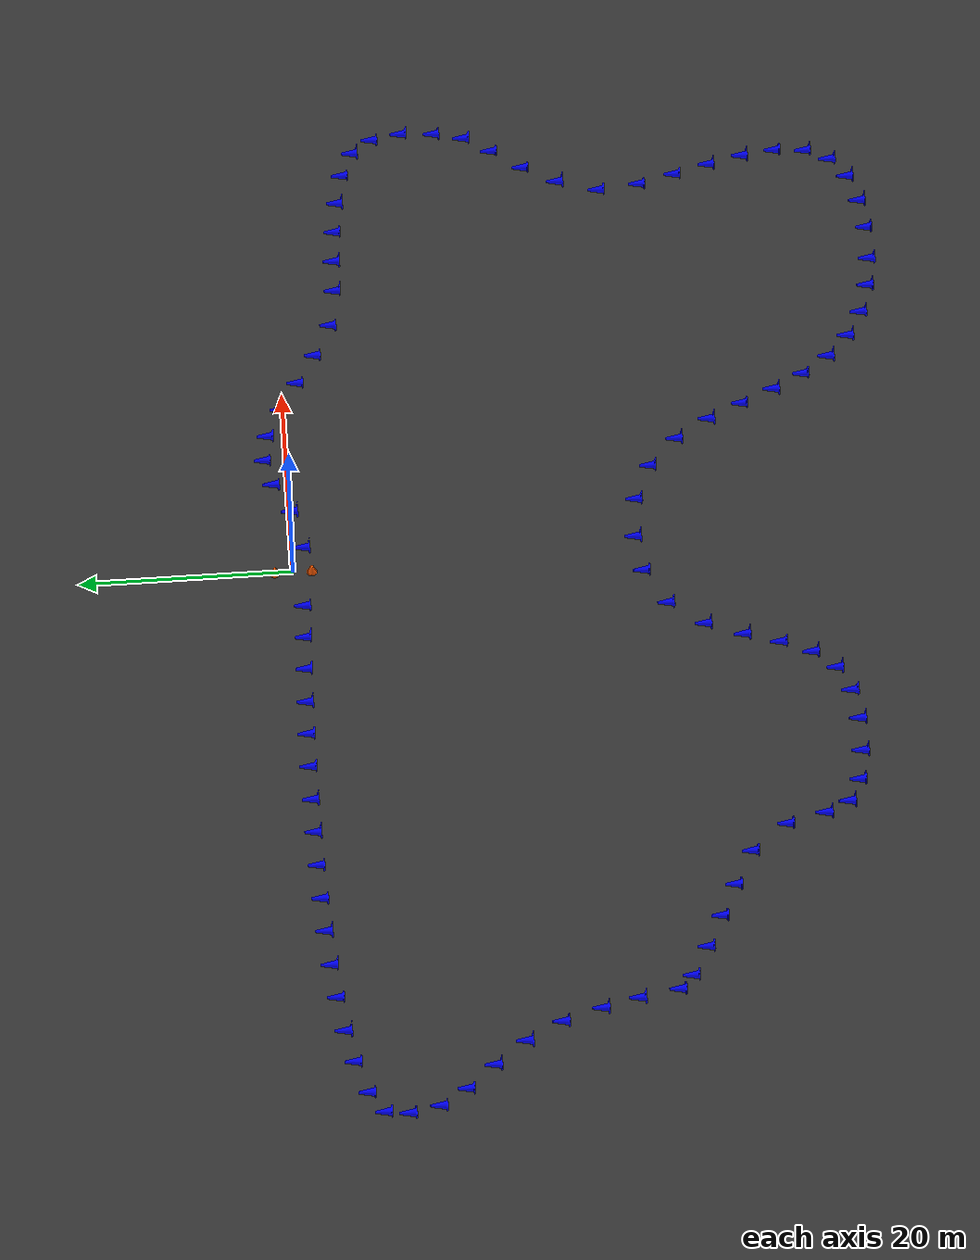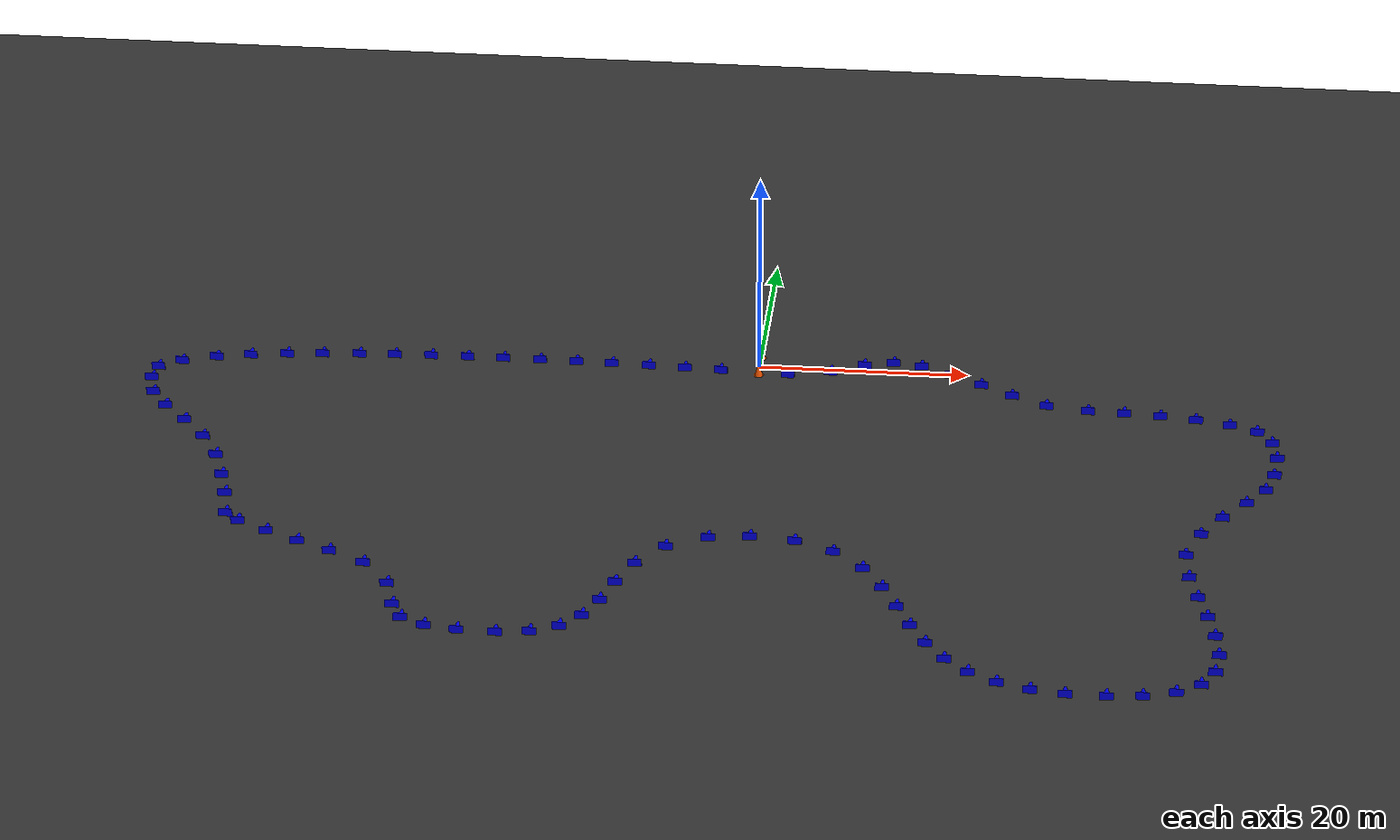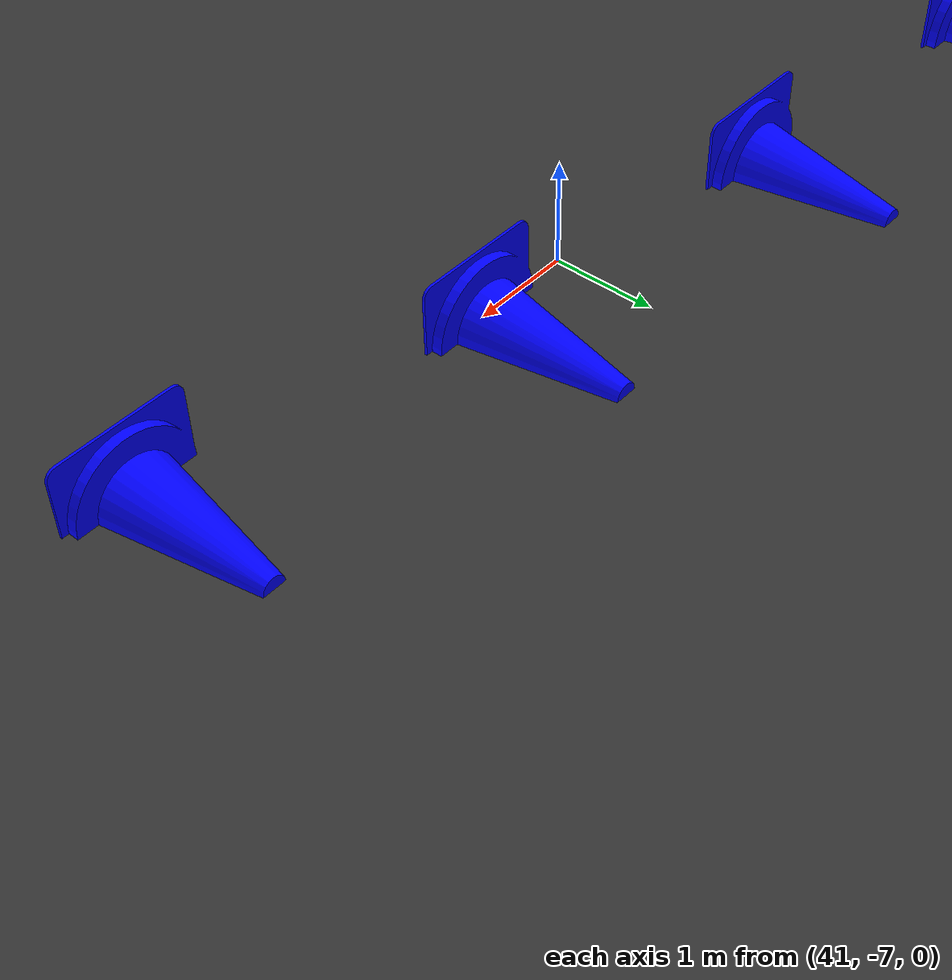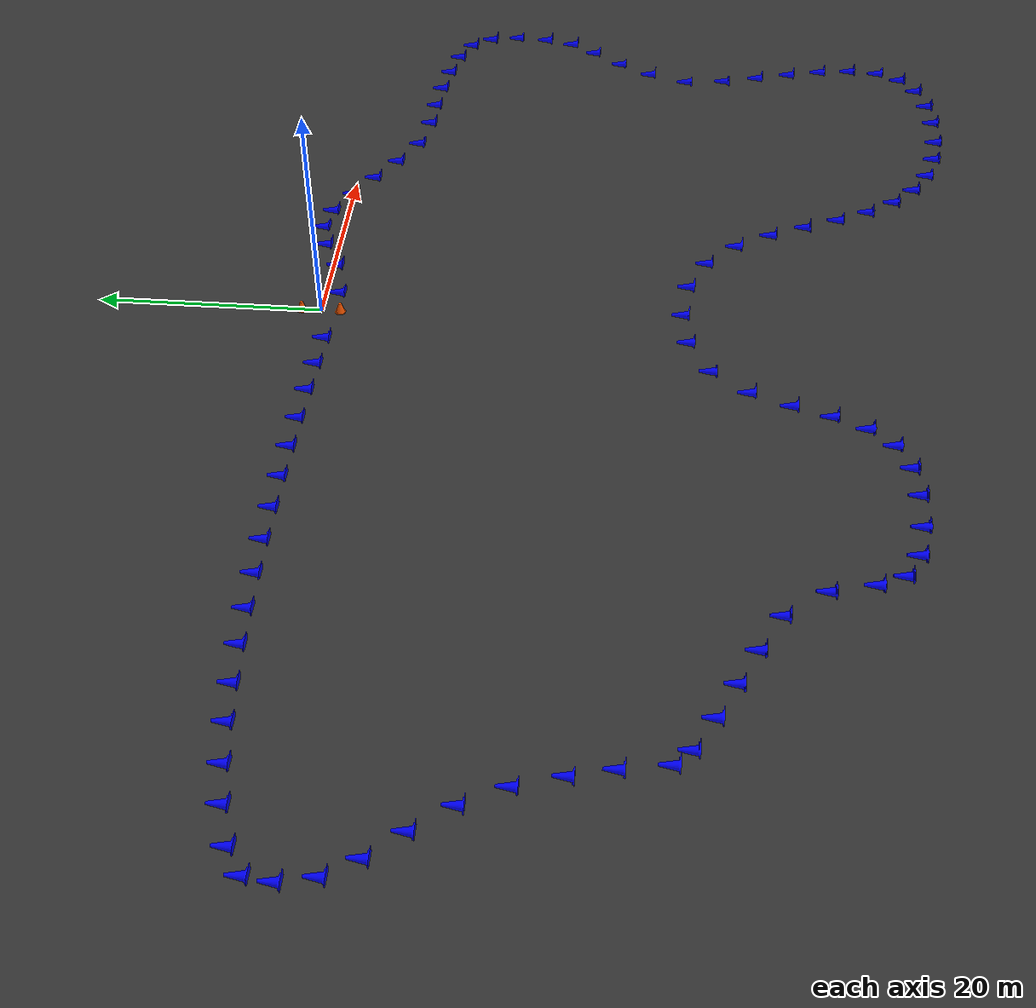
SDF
<sdf version="1.7">
 <world name="generated_world">
  <scene><sky><clouds><speed>12</speed></clouds></sky><grid>false</grid><shadows>1</shadows></scene>
  <physics type="ode">
   <max_step_size>0.001</max_step_size>
   <real_time_update_rate>1000</real_time_update_rate>
  </physics>
  <plugin filename="gz-sim-physics-system" name="gz::sim::systems::Physics"/>
  <plugin filename="gz-sim-user-commands-system" name="gz::sim::systems::UserCommands"/>
  <plugin filename="gz-sim-scene-broadcaster-system" name="gz::sim::systems::SceneBroadcaster"/>
  <plugin filename="gz-sim-contact-system" name="gz::sim::systems::Contact"/>
  <light name="sun" type="directional">
   <pose>0 0 10 0 0 0</pose>
   <diffuse>1 1 1 1</diffuse>
   <specular>0.2 0.2 0.2 1</specular>
   <direction>-0.5 0.2 -1</direction>
   <attenuation>
    <range>300</range>
    <constant>0.9</constant>
    <linear>0.01</linear>
    <quadratic>0.001</quadratic>
   </attenuation>
  </light>
  <model name="asphalt_ground">
   <static>1</static>
   <link name="link">
    <collision name="collision">
     <geometry><plane><normal>0 0 1</normal><size>300 300</size></plane></geometry>
     <surface><friction><ode><mu>100</mu><mu2>50</mu2></ode></friction></surface>
    </collision>
    <visual name="visual">
     <geometry><plane><normal>0 0 1</normal><size>300 300</size></plane></geometry>
     <material>
      <ambient>0.2 0.2 0.2 1</ambient>
      <diffuse>0.2 0.2 0.2 1</diffuse>
      <specular>0.1 0.1 0.1 1</specular>
     </material>
    </visual>
   </link>
  </model>
  <include><uri>model://cone_yellow</uri><name>cone_yellow_001</name><pose>2.761 1.924 0 0 0 0</pose></include>
  <include><uri>model://cone_yellow</uri><name>cone_yellow_002</name><pose>5.450 2.523 0 0 0 0</pose></include>
  <include><uri>model://cone_yellow</uri><name>cone_yellow_003</name><pose>8.572 4.087 0 0 0 0</pose></include>
  <include><uri>model://cone_yellow</uri><name>cone_yellow_004</name><pose>12.532 5.073 0 0 0 0</pose></include>
  <include><uri>model://cone_yellow</uri><name>cone_yellow_005</name><pose>16.664 4.449 0 0 0 0</pose></include>
  <include><uri>model://cone_yellow</uri><name>cone_yellow_006</name><pose>20.091 2.842 0 0 0 0</pose></include>
  <include><uri>model://cone_yellow</uri><name>cone_yellow_007</name><pose>23.184 1.022 0 0 0 0</pose></include>
  <include>
   <uri>model://cone_yellow</uri>
   <name>cone_yellow_008</name>
   <pose>26.159 -0.766 0 0 0 0</pose>
  </include>
  <include>
   <uri>model://cone_yellow</uri>
   <name>cone_yellow_009</name>
   <pose>29.061 -2.222 0 0 0 0</pose>
  </include>
  <include>
   <uri>model://cone_yellow</uri>
   <name>cone_yellow_010</name>
   <pose>31.822 -2.636 0 0 0 0</pose>
  </include>
  <include>
   <uri>model://cone_yellow</uri>
   <name>cone_yellow_011</name>
   <pose>35.399 -2.763 0 0 0 0</pose>
  </include>
  <include>
   <uri>model://cone_yellow</uri>
   <name>cone_yellow_012</name>
   <pose>38.978 -3.029 0 0 0 0</pose>
  </include>
  <include>
   <uri>model://cone_yellow</uri>
   <name>cone_yellow_013</name>
   <pose>42.562 -3.479 0 0 0 0</pose>
  </include>
  <include>
   <uri>model://cone_yellow</uri>
   <name>cone_yellow_014</name>
   <pose>46.192 -4.246 0 0 0 0</pose>
  </include>
  <include>
   <uri>model://cone_yellow</uri>
   <name>cone_yellow_015</name>
   <pose>49.948 -5.921 0 0 0 0</pose>
  </include>
  <include>
   <uri>model://cone_yellow</uri>
   <name>cone_yellow_016</name>
   <pose>52.579 -9.469 0 0 0 0</pose>
  </include>
  <include>
   <uri>model://cone_yellow</uri>
   <name>cone_yellow_017</name>
   <pose>53.333 -13.460 0 0 0 0</pose>
  </include>
  <include>
   <uri>model://cone_yellow</uri>
   <name>cone_yellow_018</name>
   <pose>53.105 -17.264 0 0 0 0</pose>
  </include>
  <include>
   <uri>model://cone_yellow</uri>
   <name>cone_yellow_019</name>
   <pose>52.098 -21.140 0 0 0 0</pose>
  </include>
  <include>
   <uri>model://cone_yellow</uri>
   <name>cone_yellow_020</name>
   <pose>49.965 -24.370 0 0 0 0</pose>
  </include>
  <include>
   <uri>model://cone_yellow</uri>
   <name>cone_yellow_021</name>
   <pose>47.941 -27.075 0 0 0 0</pose>
  </include>
  <include>
   <uri>model://cone_yellow</uri>
   <name>cone_yellow_022</name>
   <pose>46.303 -29.892 0 0 0 0</pose>
  </include>
  <include>
   <uri>model://cone_yellow</uri>
   <name>cone_yellow_023</name>
   <pose>45.396 -32.440 0 0 0 0</pose>
  </include>
  <include>
   <uri>model://cone_yellow</uri>
   <name>cone_yellow_024</name>
   <pose>45.752 -35.472 0 0 0 0</pose>
  </include>
  <include>
   <uri>model://cone_yellow</uri>
   <name>cone_yellow_025</name>
   <pose>46.611 -38.764 0 0 0 0</pose>
  </include>
  <include>
   <uri>model://cone_yellow</uri>
   <name>cone_yellow_026</name>
   <pose>47.582 -42.168 0 0 0 0</pose>
  </include>
  <include>
   <uri>model://cone_yellow</uri>
   <name>cone_yellow_027</name>
   <pose>48.446 -45.715 0 0 0 0</pose>
  </include>
  <include>
   <uri>model://cone_yellow</uri>
   <name>cone_yellow_028</name>
   <pose>48.945 -49.464 0 0 0 0</pose>
  </include>
  <include>
   <uri>model://cone_yellow</uri>
   <name>cone_yellow_029</name>
   <pose>48.596 -53.442 0 0 0 0</pose>
  </include>
  <include>
   <uri>model://cone_yellow</uri>
   <name>cone_yellow_030</name>
   <pose>46.649 -57.171 0 0 0 0</pose>
  </include>
  <include>
   <uri>model://cone_yellow</uri>
   <name>cone_yellow_031</name>
   <pose>43.324 -59.563 0 0 0 0</pose>
  </include>
  <include>
   <uri>model://cone_yellow</uri>
   <name>cone_yellow_032</name>
   <pose>39.553 -60.697 0 0 0 0</pose>
  </include>
  <include>
   <uri>model://cone_yellow</uri>
   <name>cone_yellow_033</name>
   <pose>35.860 -61.083 0 0 0 0</pose>
  </include>
  <include>
   <uri>model://cone_yellow</uri>
   <name>cone_yellow_034</name>
   <pose>31.779 -61.017 0 0 0 0</pose>
  </include>
  <include>
   <uri>model://cone_yellow</uri>
   <name>cone_yellow_035</name>
   <pose>28.188 -60.500 0 0 0 0</pose>
  </include>
  <include>
   <uri>model://cone_yellow</uri>
   <name>cone_yellow_036</name>
   <pose>24.498 -59.327 0 0 0 0</pose>
  </include>
  <include>
   <uri>model://cone_yellow</uri>
   <name>cone_yellow_037</name>
   <pose>21.187 -57.440 0 0 0 0</pose>
  </include>
  <include>
   <uri>model://cone_yellow</uri>
   <name>cone_yellow_038</name>
   <pose>18.362 -54.833 0 0 0 0</pose>
  </include>
  <include>
   <uri>model://cone_yellow</uri>
   <name>cone_yellow_039</name>
   <pose>16.143 -51.754 0 0 0 0</pose>
  </include>
  <include>
   <uri>model://cone_yellow</uri>
   <name>cone_yellow_040</name>
   <pose>14.422 -48.504 0 0 0 0</pose>
  </include>
  <include>
   <uri>model://cone_yellow</uri>
   <name>cone_yellow_041</name>
   <pose>12.960 -45.263 0 0 0 0</pose>
  </include>
  <include>
   <uri>model://cone_yellow</uri>
   <name>cone_yellow_042</name>
   <pose>11.509 -42.185 0 0 0 0</pose>
  </include>
  <include>
   <uri>model://cone_yellow</uri>
   <name>cone_yellow_043</name>
   <pose>9.831 -39.497 0 0 0 0</pose>
  </include>
  <include>
   <uri>model://cone_yellow</uri>
   <name>cone_yellow_044</name>
   <pose>7.750 -37.509 0 0 0 0</pose>
  </include>
  <include>
   <uri>model://cone_yellow</uri>
   <name>cone_yellow_045</name>
   <pose>5.188 -36.391 0 0 0 0</pose>
  </include>
  <include>
   <uri>model://cone_yellow</uri>
   <name>cone_yellow_046</name>
   <pose>1.943 -36.076 0 0 0 0</pose>
  </include>
  <include>
   <uri>model://cone_yellow</uri>
   <name>cone_yellow_047</name>
   <pose>-0.978 -36.468 0 0 0 0</pose>
  </include>
  <include>
   <uri>model://cone_yellow</uri>
   <name>cone_yellow_048</name>
   <pose>-3.398 -37.722 0 0 0 0</pose>
  </include>
  <include>
   <uri>model://cone_yellow</uri>
   <name>cone_yellow_049</name>
   <pose>-5.090 -39.938 0 0 0 0</pose>
  </include>
  <include>
   <uri>model://cone_yellow</uri>
   <name>cone_yellow_050</name>
   <pose>-6.282 -42.924 0 0 0 0</pose>
  </include>
  <include>
   <uri>model://cone_yellow</uri>
   <name>cone_yellow_051</name>
   <pose>-7.382 -46.303 0 0 0 0</pose>
  </include>
  <include>
   <uri>model://cone_yellow</uri>
   <name>cone_yellow_052</name>
   <pose>-8.985 -49.808 0 0 0 0</pose>
  </include>
  <include>
   <uri>model://cone_yellow</uri>
   <name>cone_yellow_053</name>
   <pose>-11.757 -52.874 0 0 0 0</pose>
  </include>
  <include>
   <uri>model://cone_yellow</uri>
   <name>cone_yellow_054</name>
   <pose>-15.472 -54.603 0 0 0 0</pose>
  </include>
  <include>
   <uri>model://cone_yellow</uri>
   <name>cone_yellow_055</name>
   <pose>-19.381 -55.118 0 0 0 0</pose>
  </include>
  <include>
   <uri>model://cone_yellow</uri>
   <name>cone_yellow_056</name>
   <pose>-23.224 -55.010 0 0 0 0</pose>
  </include>
  <include>
   <uri>model://cone_yellow</uri>
   <name>cone_yellow_057</name>
   <pose>-26.966 -54.369 0 0 0 0</pose>
  </include>
  <include>
   <uri>model://cone_yellow</uri>
   <name>cone_yellow_058</name>
   <pose>-30.725 -52.286 0 0 0 0</pose>
  </include>
  <include>
   <uri>model://cone_yellow</uri>
   <name>cone_yellow_059</name>
   <pose>-32.713 -48.415 0 0 0 0</pose>
  </include>
  <include>
   <uri>model://cone_yellow</uri>
   <name>cone_yellow_060</name>
   <pose>-33.512 -45.253 0 0 0 0</pose>
  </include>
  <include>
   <uri>model://cone_yellow</uri>
   <name>cone_yellow_061</name>
   <pose>-34.970 -43.339 0 0 0 0</pose>
  </include>
  <include>
   <uri>model://cone_yellow</uri>
   <name>cone_yellow_062</name>
   <pose>-37.848 -41.817 0 0 0 0</pose>
  </include>
  <include>
   <uri>model://cone_yellow</uri>
   <name>cone_yellow_063</name>
   <pose>-41.004 -40.286 0 0 0 0</pose>
  </include>
  <include>
   <uri>model://cone_yellow</uri>
   <name>cone_yellow_064</name>
   <pose>-44.176 -38.734 0 0 0 0</pose>
  </include>
  <include>
   <uri>model://cone_yellow</uri>
   <name>cone_yellow_065</name>
   <pose>-47.390 -36.946 0 0 0 0</pose>
  </include>
  <include>
   <uri>model://cone_yellow</uri>
   <name>cone_yellow_066</name>
   <pose>-50.299 -33.003 0 0 0 0</pose>
  </include>
  <include>
   <uri>model://cone_yellow</uri>
   <name>cone_yellow_067</name>
   <pose>-50.861 -29.794 0 0 0 0</pose>
  </include>
  <include>
   <uri>model://cone_yellow</uri>
   <name>cone_yellow_068</name>
   <pose>-51.660 -26.526 0 0 0 0</pose>
  </include>
  <include>
   <uri>model://cone_yellow</uri>
   <name>cone_yellow_069</name>
   <pose>-52.645 -23.277 0 0 0 0</pose>
  </include>
  <include>
   <uri>model://cone_yellow</uri>
   <name>cone_yellow_070</name>
   <pose>-54.085 -20.476 0 0 0 0</pose>
  </include>
  <include>
   <uri>model://cone_yellow</uri>
   <name>cone_yellow_071</name>
   <pose>-56.046 -17.886 0 0 0 0</pose>
  </include>
  <include>
   <uri>model://cone_yellow</uri>
   <name>cone_yellow_072</name>
   <pose>-58.363 -15.189 0 0 0 0</pose>
  </include>
  <include>
   <uri>model://cone_yellow</uri>
   <name>cone_yellow_073</name>
   <pose>-60.434 -11.812 0 0 0 0</pose>
  </include>
  <include>
   <uri>model://cone_yellow</uri>
   <name>cone_yellow_074</name>
   <pose>-61.259 -7.808 0 0 0 0</pose>
  </include>
  <include>
   <uri>model://cone_yellow</uri>
   <name>cone_yellow_075</name>
   <pose>-60.291 -3.435 0 0 0 0</pose>
  </include>
  <include>
   <uri>model://cone_yellow</uri>
   <name>cone_yellow_076</name>
   <pose>-56.813 -0.949 0 0 0 0</pose>
  </include>
  <include>
   <uri>model://cone_yellow</uri>
   <name>cone_yellow_077</name>
   <pose>-53.085 0.276 0 0 0 0</pose>
  </include>
  <include>
   <uri>model://cone_yellow</uri>
   <name>cone_yellow_078</name>
   <pose>-49.612 1.000 0 0 0 0</pose>
  </include>
  <include>
   <uri>model://cone_yellow</uri>
   <name>cone_yellow_079</name>
   <pose>-45.980 1.533 0 0 0 0</pose>
  </include>
  <include>
   <uri>model://cone_yellow</uri>
   <name>cone_yellow_080</name>
   <pose>-42.475 1.906 0 0 0 0</pose>
  </include>
  <include>
   <uri>model://cone_yellow</uri>
   <name>cone_yellow_081</name>
   <pose>-38.855 2.187 0 0 0 0</pose>
  </include>
  <include>
   <uri>model://cone_yellow</uri>
   <name>cone_yellow_082</name>
   <pose>-35.356 2.382 0 0 0 0</pose>
  </include>
  <include>
   <uri>model://cone_yellow</uri>
   <name>cone_yellow_083</name>
   <pose>-31.791 2.519 0 0 0 0</pose>
  </include>
  <include>
   <uri>model://cone_yellow</uri>
   <name>cone_yellow_084</name>
   <pose>-28.242 2.603 0 0 0 0</pose>
  </include>
  <include>
   <uri>model://cone_yellow</uri>
   <name>cone_yellow_085</name>
   <pose>-24.720 2.644 0 0 0 0</pose>
  </include>
  <include>
   <uri>model://cone_yellow</uri>
   <name>cone_yellow_086</name>
   <pose>-21.164 2.646 0 0 0 0</pose>
  </include>
  <include>
   <uri>model://cone_yellow</uri>
   <name>cone_yellow_087</name>
   <pose>-17.614 2.614 0 0 0 0</pose>
  </include>
  <include>
   <uri>model://cone_yellow</uri>
   <name>cone_yellow_088</name>
   <pose>-14.131 2.553 0 0 0 0</pose>
  </include>
  <include>
   <uri>model://cone_yellow</uri>
   <name>cone_yellow_089</name>
   <pose>-10.511 2.459 0 0 0 0</pose>
  </include>
  <include><uri>model://cone_yellow</uri><name>cone_yellow_090</name><pose>-7.023 2.341 0 0 0 0</pose></include>
  <include><uri>model://cone_yellow</uri><name>cone_yellow_091</name><pose>-3.528 2.195 0 0 0 0</pose></include>
  <include><uri>model://cone_blue</uri><name>cone_blue_001</name><pose>2.769 -1.576 0 0 0 0</pose></include>
  <include><uri>model://cone_blue</uri><name>cone_blue_002</name><pose>6.865 -0.678 0 0 0 0</pose></include>
  <include><uri>model://cone_blue</uri><name>cone_blue_003</name><pose>9.988 0.886 0 0 0 0</pose></include>
  <include><uri>model://cone_blue</uri><name>cone_blue_004</name><pose>12.750 1.580 0 0 0 0</pose></include>
  <include><uri>model://cone_blue</uri><name>cone_blue_005</name><pose>15.474 1.157 0 0 0 0</pose></include>
  <include><uri>model://cone_blue</uri><name>cone_blue_006</name><pose>18.402 -0.223 0 0 0 0</pose></include>
  <include><uri>model://cone_blue</uri><name>cone_blue_007</name><pose>21.360 -1.965 0 0 0 0</pose></include>
  <include><uri>model://cone_blue</uri><name>cone_blue_008</name><pose>24.415 -3.801 0 0 0 0</pose></include>
  <include><uri>model://cone_blue</uri><name>cone_blue_009</name><pose>27.793 -5.484 0 0 0 0</pose></include>
  <include><uri>model://cone_blue</uri><name>cone_blue_010</name><pose>31.767 -6.136 0 0 0 0</pose></include>
  <include><uri>model://cone_blue</uri><name>cone_blue_011</name><pose>35.210 -6.257 0 0 0 0</pose></include>
  <include><uri>model://cone_blue</uri><name>cone_blue_012</name><pose>38.641 -6.513 0 0 0 0</pose></include>
  <include><uri>model://cone_blue</uri><name>cone_blue_013</name><pose>42.012 -6.936 0 0 0 0</pose></include>
  <include><uri>model://cone_blue</uri><name>cone_blue_014</name><pose>45.249 -7.617 0 0 0 0</pose></include>
  <include><uri>model://cone_blue</uri><name>cone_blue_015</name><pose>47.853 -8.724 0 0 0 0</pose></include>
  <include><uri>model://cone_blue</uri><name>cone_blue_016</name><pose>49.313 -10.729 0 0 0 0</pose></include>
  <include><uri>model://cone_blue</uri><name>cone_blue_017</name><pose>49.835 -13.589 0 0 0 0</pose></include>
  <include><uri>model://cone_blue</uri><name>cone_blue_018</name><pose>49.640 -16.771 0 0 0 0</pose></include>
  <include><uri>model://cone_blue</uri><name>cone_blue_019</name><pose>48.932 -19.649 0 0 0 0</pose></include>
  <include><uri>model://cone_blue</uri><name>cone_blue_020</name><pose>47.209 -22.212 0 0 0 0</pose></include>
  <include><uri>model://cone_blue</uri><name>cone_blue_021</name><pose>45.041 -25.116 0 0 0 0</pose></include>
  <include><uri>model://cone_blue</uri><name>cone_blue_022</name><pose>43.165 -28.340 0 0 0 0</pose></include>
  <include><uri>model://cone_blue</uri><name>cone_blue_023</name><pose>41.901 -32.254 0 0 0 0</pose></include>
  <include><uri>model://cone_blue</uri><name>cone_blue_024</name><pose>42.333 -36.218 0 0 0 0</pose></include>
  <include><uri>model://cone_blue</uri><name>cone_blue_025</name><pose>43.246 -39.726 0 0 0 0</pose></include>
  <include><uri>model://cone_blue</uri><name>cone_blue_026</name><pose>44.207 -43.095 0 0 0 0</pose></include>
  <include><uri>model://cone_blue</uri><name>cone_blue_027</name><pose>45.016 -46.409 0 0 0 0</pose></include>
  <include><uri>model://cone_blue</uri><name>cone_blue_028</name><pose>45.449 -49.633 0 0 0 0</pose></include>
  <include><uri>model://cone_blue</uri><name>cone_blue_029</name><pose>45.207 -52.570 0 0 0 0</pose></include>
  <include><uri>model://cone_blue</uri><name>cone_blue_030</name><pose>44.031 -54.848 0 0 0 0</pose></include>
  <include><uri>model://cone_blue</uri><name>cone_blue_031</name><pose>41.873 -56.378 0 0 0 0</pose></include>
  <include><uri>model://cone_blue</uri><name>cone_blue_032</name><pose>38.929 -57.253 0 0 0 0</pose></include>
  <include><uri>model://cone_blue</uri><name>cone_blue_033</name><pose>35.719 -57.586 0 0 0 0</pose></include>
  <include><uri>model://cone_blue</uri><name>cone_blue_034</name><pose>32.048 -57.527 0 0 0 0</pose></include>
  <include><uri>model://cone_blue</uri><name>cone_blue_035</name><pose>28.936 -57.081 0 0 0 0</pose></include>
  <include><uri>model://cone_blue</uri><name>cone_blue_036</name><pose>25.886 -56.114 0 0 0 0</pose></include>
  <include><uri>model://cone_blue</uri><name>cone_blue_037</name><pose>23.253 -54.615 0 0 0 0</pose></include>
  <include><uri>model://cone_blue</uri><name>cone_blue_038</name><pose>21.002 -52.534 0 0 0 0</pose></include>
  <include><uri>model://cone_blue</uri><name>cone_blue_039</name><pose>19.139 -49.945 0 0 0 0</pose></include>
  <include><uri>model://cone_blue</uri><name>cone_blue_040</name><pose>17.585 -47.005 0 0 0 0</pose></include>
  <include><uri>model://cone_blue</uri><name>cone_blue_041</name><pose>16.159 -43.842 0 0 0 0</pose></include>
  <include><uri>model://cone_blue</uri><name>cone_blue_042</name><pose>14.613 -40.568 0 0 0 0</pose></include>
  <include><uri>model://cone_blue</uri><name>cone_blue_043</name><pose>12.593 -37.347 0 0 0 0</pose></include>
  <include><uri>model://cone_blue</uri><name>cone_blue_044</name><pose>9.702 -34.604 0 0 0 0</pose></include>
  <include><uri>model://cone_blue</uri><name>cone_blue_045</name><pose>6.029 -32.994 0 0 0 0</pose></include>
  <include><uri>model://cone_blue</uri><name>cone_blue_046</name><pose>1.876 -32.577 0 0 0 0</pose></include>
  <include><uri>model://cone_blue</uri><name>cone_blue_047</name><pose>-1.935 -33.102 0 0 0 0</pose></include>
  <include><uri>model://cone_blue</uri><name>cone_blue_048</name><pose>-5.669 -35.059 0 0 0 0</pose></include>
  <include><uri>model://cone_blue</uri><name>cone_blue_049</name><pose>-8.193 -38.320 0 0 0 0</pose></include>
  <include><uri>model://cone_blue</uri><name>cone_blue_050</name><pose>-9.607 -41.831 0 0 0 0</pose></include>
  <include><uri>model://cone_blue</uri><name>cone_blue_051</name><pose>-10.681 -45.134 0 0 0 0</pose></include>
  <include><uri>model://cone_blue</uri><name>cone_blue_052</name><pose>-11.972 -47.984 0 0 0 0</pose></include>
  <include><uri>model://cone_blue</uri><name>cone_blue_053</name><pose>-13.824 -50.050 0 0 0 0</pose></include>
  <include><uri>model://cone_blue</uri><name>cone_blue_054</name><pose>-16.365 -51.218 0 0 0 0</pose></include>
  <include><uri>model://cone_blue</uri><name>cone_blue_055</name><pose>-19.464 -51.619 0 0 0 0</pose></include>
  <include><uri>model://cone_blue</uri><name>cone_blue_056</name><pose>-22.934 -51.523 0 0 0 0</pose></include>
  <include><uri>model://cone_blue</uri><name>cone_blue_057</name><pose>-25.992 -51.007 0 0 0 0</pose></include>
  <include><uri>model://cone_blue</uri><name>cone_blue_058</name><pose>-28.242 -49.819 0 0 0 0</pose></include>
  <include><uri>model://cone_blue</uri><name>cone_blue_059</name><pose>-29.314 -47.582 0 0 0 0</pose></include>
  <include><uri>model://cone_blue</uri><name>cone_blue_060</name><pose>-30.255 -43.972 0 0 0 0</pose></include>
  <include><uri>model://cone_blue</uri><name>cone_blue_061</name><pose>-32.900 -40.516 0 0 0 0</pose></include>
  <include><uri>model://cone_blue</uri><name>cone_blue_062</name><pose>-36.307 -38.675 0 0 0 0</pose></include>
  <include><uri>model://cone_blue</uri><name>cone_blue_063</name><pose>-39.483 -37.134 0 0 0 0</pose></include>
  <include><uri>model://cone_blue</uri><name>cone_blue_064</name><pose>-42.600 -35.609 0 0 0 0</pose></include>
  <include><uri>model://cone_blue</uri><name>cone_blue_065</name><pose>-45.474 -34.017 0 0 0 0</pose></include>
  <include><uri>model://cone_blue</uri><name>cone_blue_066</name><pose>-46.811 -32.713 0 0 0 0</pose></include>
  <include><uri>model://cone_blue</uri><name>cone_blue_067</name><pose>-47.447 -29.019 0 0 0 0</pose></include>
  <include><uri>model://cone_blue</uri><name>cone_blue_068</name><pose>-48.271 -25.653 0 0 0 0</pose></include>
  <include><uri>model://cone_blue</uri><name>cone_blue_069</name><pose>-49.393 -21.983 0 0 0 0</pose></include>
  <include><uri>model://cone_blue</uri><name>cone_blue_070</name><pose>-51.138 -18.587 0 0 0 0</pose></include>
  <include><uri>model://cone_blue</uri><name>cone_blue_071</name><pose>-53.385 -15.612 0 0 0 0</pose></include>
  <include><uri>model://cone_blue</uri><name>cone_blue_072</name><pose>-55.631 -13.002 0 0 0 0</pose></include>
  <include><uri>model://cone_blue</uri><name>cone_blue_073</name><pose>-57.197 -10.480 0 0 0 0</pose></include>
  <include><uri>model://cone_blue</uri><name>cone_blue_074</name><pose>-57.761 -7.707 0 0 0 0</pose></include>
  <include><uri>model://cone_blue</uri><name>cone_blue_075</name><pose>-57.487 -5.529 0 0 0 0</pose></include>
  <include><uri>model://cone_blue</uri><name>cone_blue_076</name><pose>-55.416 -4.157 0 0 0 0</pose></include>
  <include><uri>model://cone_blue</uri><name>cone_blue_077</name><pose>-52.231 -3.118 0 0 0 0</pose></include>
  <include><uri>model://cone_blue</uri><name>cone_blue_078</name><pose>-49.014 -2.448 0 0 0 0</pose></include>
  <include><uri>model://cone_blue</uri><name>cone_blue_079</name><pose>-45.550 -1.941 0 0 0 0</pose></include>
  <include><uri>model://cone_blue</uri><name>cone_blue_080</name><pose>-42.159 -1.580 0 0 0 0</pose></include>
  <include><uri>model://cone_blue</uri><name>cone_blue_081</name><pose>-38.626 -1.305 0 0 0 0</pose></include>
  <include><uri>model://cone_blue</uri><name>cone_blue_082</name><pose>-35.194 -1.114 0 0 0 0</pose></include>
  <include><uri>model://cone_blue</uri><name>cone_blue_083</name><pose>-31.684 -0.980 0 0 0 0</pose></include>
  <include><uri>model://cone_blue</uri><name>cone_blue_084</name><pose>-28.181 -0.896 0 0 0 0</pose></include>
  <include><uri>model://cone_blue</uri><name>cone_blue_085</name><pose>-24.699 -0.856 0 0 0 0</pose></include>
  <include><uri>model://cone_blue</uri><name>cone_blue_086</name><pose>-21.179 -0.854 0 0 0 0</pose></include>
  <include><uri>model://cone_blue</uri><name>cone_blue_087</name><pose>-17.661 -0.885 0 0 0 0</pose></include>
  <include><uri>model://cone_blue</uri><name>cone_blue_088</name><pose>-14.207 -0.946 0 0 0 0</pose></include>
  <include><uri>model://cone_blue</uri><name>cone_blue_089</name><pose>-10.616 -1.039 0 0 0 0</pose></include>
  <include><uri>model://cone_blue</uri><name>cone_blue_090</name><pose>-7.155 -1.156 0 0 0 0</pose></include>
  <include><uri>model://cone_blue</uri><name>cone_blue_091</name><pose>-3.689 -1.301 0 0 0 0</pose></include>
  <include>
   <uri>model://cone_orange_big</uri>
   <name>cone_orange_big_001</name>
   <pose>0.000 -1.726 0 0 0 0</pose>
  </include>
  <include>
   <uri>model://cone_orange_big</uri>
   <name>cone_orange_big_002</name>
   <pose>0.000 1.726 0 0 0 0</pose>
  </include>
 </world>
</sdf>

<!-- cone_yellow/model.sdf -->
<sdf version="1.6">
  <model name="cone_yellow">
    <static>1</static>
    <link name="link">

      <visual name="visual">
        <pose>0 0 0 0 0 0</pose>
        <geometry>
          <mesh>
            <uri>model://cone_yellow/meshes/cone.stl</uri>
            <scale>0.005 0.005 0.005</scale>
          </mesh>
        </geometry>
        <material>
          <ambient>1.0 1.0 0.0 1</ambient>
          <diffuse>1.0 1.0 0.0 1</diffuse>
        </material>
      </visual>

      <collision name="collision">
        <pose>0 0 0.15 0 0 0</pose>
        <geometry>
          <cylinder>
            <radius>0.1</radius>
            <length>0.3</length>
          </cylinder>
        </geometry>
        <surface>
          <friction>
            <ode>
              <mu>0.9</mu> <mu2>0.9</mu2> </ode>
          </friction>
        </surface>
      </collision>

      <inertial>
        <pose>0 0 0.05 0 0 0</pose>
        <mass>1</mass>
        <inertia>
          <ixx>0.01</ixx> <iyy>0.01</iyy> <izz>0.005</izz>
          <ixy>0.0</ixy> <ixz>0.0</ixz> <iyz>0.0</iyz>
        </inertia>
      </inertial>

    </link>
  </model>
</sdf>

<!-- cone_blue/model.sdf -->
<sdf version="1.6">
  <model name="cone_blue">
    <static>1</static>
    <link name="link">

      <inertial>
        <pose>0 0 0.05 0 0 0</pose> <mass>1</mass>
        <inertia>
          <ixx>0.01</ixx> <iyy>0.01</iyy> <izz>0.005</izz>
          <ixy>0.0</ixy> <ixz>0.0</ixz> <iyz>0.0</iyz>
        </inertia>
      </inertial>

      <collision name="collision">
        <pose>0 0 0.15 0 0 0</pose>
        <geometry>
          <cylinder>
            <radius>0.1</radius>
            <length>0.3</length>
          </cylinder>
        </geometry>
      </collision>

      <visual name="visual">
        <pose>0 0 0 0 0 0</pose>
        <geometry>
          <mesh>
            <uri>model://cone_blue/meshes/cone.stl</uri>
            <scale>0.005 0.005 0.005</scale>
          </mesh>
        </geometry>
        <material>
          <ambient>0.0 0.0 1.0 1</ambient>
          <diffuse>0.0 0.0 1.0 1</diffuse>
        </material>
      </visual>

    </link>
  </model>
</sdf>

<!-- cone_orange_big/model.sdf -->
<sdf version="1.6">
  <model name="cone_orange_big">
    <static>1</static>
    <link name="link">
      <visual name="visual">
        <geometry>
          <mesh>
            <uri>model://cone_orange_big/meshes/cone.stl</uri>
            <scale>0.0112 0.0112 0.0112</scale>
          </mesh>
        </geometry>
        <material>
          <ambient>1.0 0.35 0.0 1</ambient>
	  <diffuse>1.0 0.35 0.0 1</diffuse>
        </material>
      </visual>
      <collision name="collision">
        <geometry>
          <mesh>
            <uri>model://cone_orange_big/meshes/cone.stl</uri>
            <scale>0.0112 0.0112 0.0112</scale>
          </mesh>
        </geometry>
      </collision>
      <inertial>
        <mass>0.1</mass>
        <inertia>
          <ixx>0.0001</ixx>
          <iyy>0.0001</iyy>
          <izz>0.0001</izz>
          <ixy>0.0</ixy>
          <ixz>0.0</ixz>
          <iyz>0.0</iyz>
        </inertia>
      </inertial>
    </link>
  </model>
</sdf>
